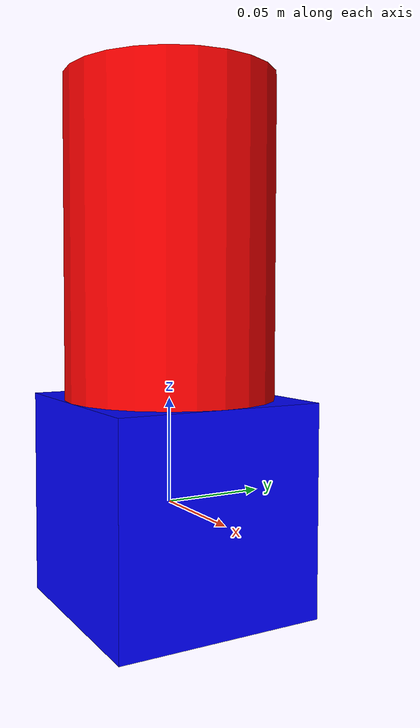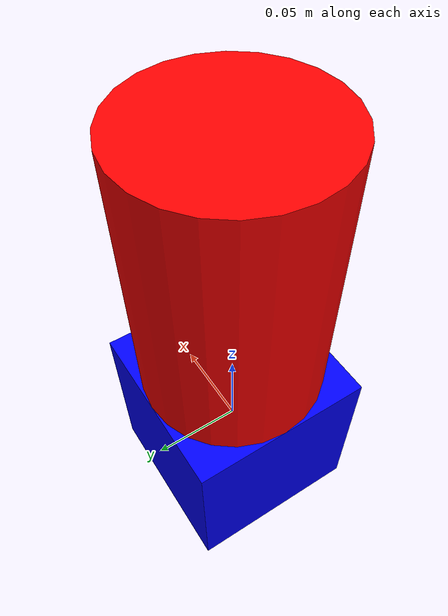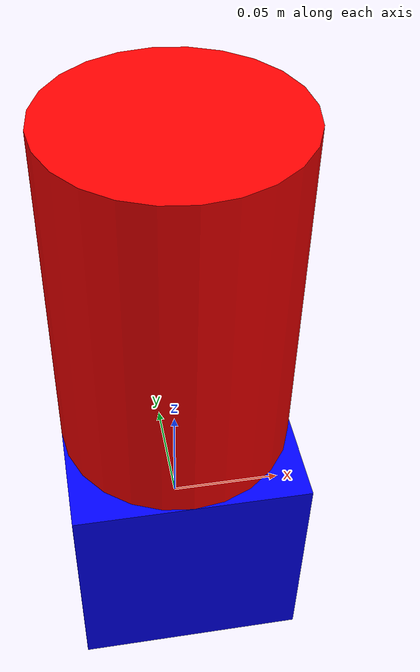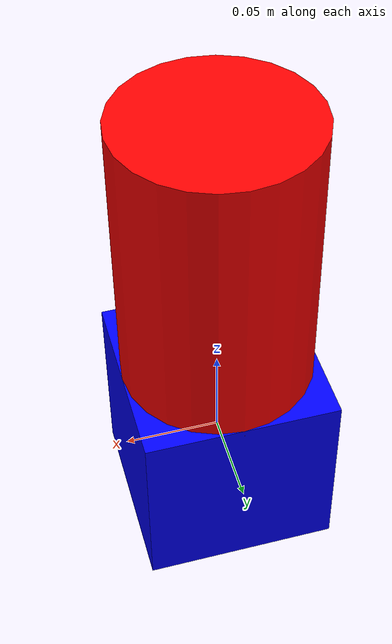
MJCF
<mujoco model="simple_robot">
  <compiler angle="radian" autolimits="true"/>

  <option timestep="0.002" integrator="implicitfast"/>

  <worldbody>
    <body name="base_link" pos="0 0 0">
      <inertial pos="0 0 0" mass="1.0" diaginertia="0.1 0.1 0.1"/>
      <geom name="base_geom" type="box" size="0.05 0.05 0.05" rgba="0 0 1 1"/>

      <body name="link1" pos="0 0 0.1">
        <inertial pos="0 0 0" mass="0.5" diaginertia="0.05 0.05 0.05"/>
        <joint name="joint1" type="hinge" axis="0 0 1" range="-3.14 3.14" damping="0.1" frictionloss="0.05"/>
        <geom name="link1_geom" type="cylinder" size="0.05 0.1" rgba="1 0 0 1"/>
      </body>
    </body>
  </worldbody>

  <actuator>
    <motor name="motor1" joint="joint1" gear="1" ctrllimited="true" ctrlrange="-10 10"/>
  </actuator>
</mujoco>
